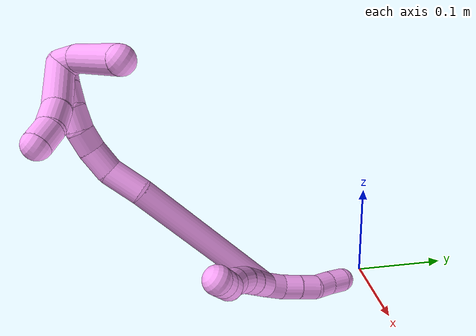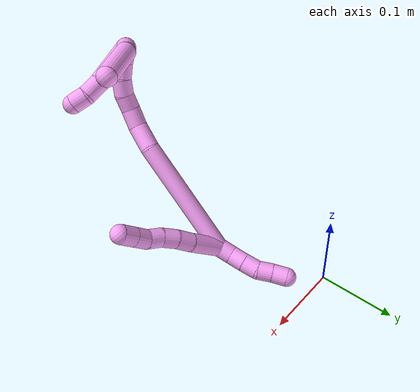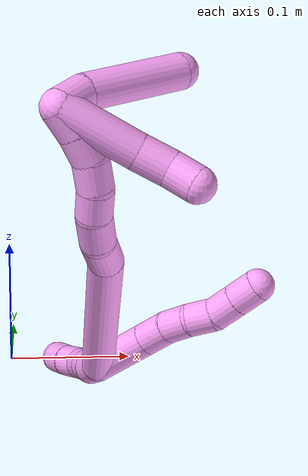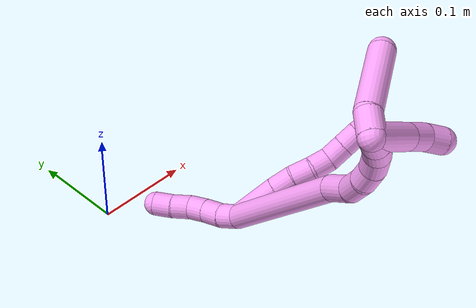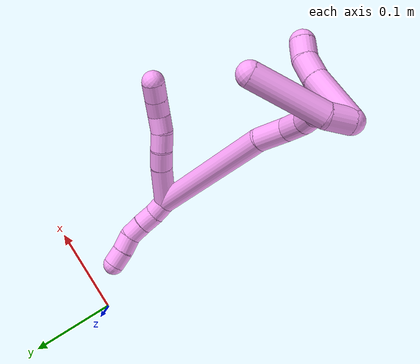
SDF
<sdf version="1.7">
 <world name="default">
  <model name="4">
   <static>0</static>
   <link name="4">
    <collision name="collision-cylinder-e_1_2_8">
     <pose>0.015107 0.006547 0.016841 -0.370775 0.696372 -0.135935</pose>
     <geometry><cylinder><radius>0.0125</radius><length>0.047104</length></cylinder></geometry>
     <surface>
      <friction><ode><mu>1.16</mu><mu2>1.16</mu2><slip1>0</slip1><slip2>0</slip2></ode></friction>
      <contact><ode><kp>1e+06</kp><kd>1</kd><max_vel>0</max_vel><min_depth>0.001</min_depth></ode></contact>
     </surface>
    </collision>
    <visual name="visual-cylinder-e_1_2_8">
     <pose>0.015107 0.006547 0.016841 -0.370775 0.696372 -0.135935</pose>
     <geometry><cylinder><radius>0.0125</radius><length>0.047104</length></cylinder></geometry>
     <material><ambient>1 0.65098 0.996078 1</ambient></material>
    </visual>
    <collision name="collision-cylinder-e_2_8_9">
     <pose>0.036835 0.015401 0.042257 -0.262861 0.64064 -0.087652</pose>
     <geometry><cylinder><radius>0.0125</radius><length>0.022154</length></cylinder></geometry>
     <surface>
      <friction><ode><mu>1.16</mu><mu2>1.16</mu2><slip1>0</slip1><slip2>0</slip2></ode></friction>
      <contact><ode><kp>1e+06</kp><kd>1</kd><max_vel>0</max_vel><min_depth>0.001</min_depth></ode></contact>
     </surface>
    </collision>
    <visual name="visual-cylinder-e_2_8_9">
     <pose>0.036835 0.015401 0.042257 -0.262861 0.64064 -0.087652</pose>
     <geometry><cylinder><radius>0.0125</radius><length>0.022154</length></cylinder></geometry>
     <material><ambient>1 0.65098 0.996078 1</ambient></material>
    </visual>
    <collision name="collision-cylinder-e_3_9_10">
     <pose>0.050469 0.018483 0.0583 -0.103216 0.751301 -0.040737</pose>
     <geometry><cylinder><radius>0.0125</radius><length>0.020546</length></cylinder></geometry>
     <surface>
      <friction><ode><mu>1.16</mu><mu2>1.16</mu2><slip1>0</slip1><slip2>0</slip2></ode></friction>
      <contact><ode><kp>1e+06</kp><kd>1</kd><max_vel>0</max_vel><min_depth>0.001</min_depth></ode></contact>
     </surface>
    </collision>
    <visual name="visual-cylinder-e_3_9_10">
     <pose>0.050469 0.018483 0.0583 -0.103216 0.751301 -0.040737</pose>
     <geometry><cylinder><radius>0.0125</radius><length>0.020546</length></cylinder></geometry>
     <material><ambient>1 0.65098 0.996078 1</ambient></material>
    </visual>
    <collision name="collision-cylinder-e_4_10_11">
     <pose>0.06569 0.020641 0.071326 -0.244099 0.961553 -0.127784</pose>
     <geometry><cylinder><radius>0.0125</radius><length>0.02002</length></cylinder></geometry>
     <surface>
      <friction><ode><mu>1.16</mu><mu2>1.16</mu2><slip1>0</slip1><slip2>0</slip2></ode></friction>
      <contact><ode><kp>1e+06</kp><kd>1</kd><max_vel>0</max_vel><min_depth>0.001</min_depth></ode></contact>
     </surface>
    </collision>
    <visual name="visual-cylinder-e_4_10_11">
     <pose>0.06569 0.020641 0.071326 -0.244099 0.961553 -0.127784</pose>
     <geometry><cylinder><radius>0.0125</radius><length>0.02002</length></cylinder></geometry>
     <material><ambient>1 0.65098 0.996078 1</ambient></material>
    </visual>
    <collision name="collision-cylinder-e_5_11_12">
     <pose>0.080042 0.025778 0.083908 -0.490834 0.657121 -0.170363</pose>
     <geometry><cylinder><radius>0.0125</radius><length>0.020115</length></cylinder></geometry>
     <surface>
      <friction><ode><mu>1.16</mu><mu2>1.16</mu2><slip1>0</slip1><slip2>0</slip2></ode></friction>
      <contact><ode><kp>1e+06</kp><kd>1</kd><max_vel>0</max_vel><min_depth>0.001</min_depth></ode></contact>
     </surface>
    </collision>
    <visual name="visual-cylinder-e_5_11_12">
     <pose>0.080042 0.025778 0.083908 -0.490834 0.657121 -0.170363</pose>
     <geometry><cylinder><radius>0.0125</radius><length>0.020115</length></cylinder></geometry>
     <material><ambient>1 0.65098 0.996078 1</ambient></material>
    </visual>
    <collision name="collision-cylinder-e_6_12_6">
     <pose>0.092301 0.033243 0.097962 -0.485589 0.655606 -0.168062</pose>
     <geometry><cylinder><radius>0.0125</radius><length>0.020061</length></cylinder></geometry>
     <surface>
      <friction><ode><mu>1.16</mu><mu2>1.16</mu2><slip1>0</slip1><slip2>0</slip2></ode></friction>
      <contact><ode><kp>1e+06</kp><kd>1</kd><max_vel>0</max_vel><min_depth>0.001</min_depth></ode></contact>
     </surface>
    </collision>
    <visual name="visual-cylinder-e_6_12_6">
     <pose>0.092301 0.033243 0.097962 -0.485589 0.655606 -0.168062</pose>
     <geometry><cylinder><radius>0.0125</radius><length>0.020061</length></cylinder></geometry>
     <material><ambient>1 0.65098 0.996078 1</ambient></material>
    </visual>
    <collision name="collision-cylinder-e_1_2_13">
     <pose>-0.002066 0.002897 -0.009346 -2.84101 -0.208093 1.20737</pose>
     <geometry><cylinder><radius>0.0125</radius><length>0.02</length></cylinder></geometry>
     <surface>
      <friction><ode><mu>1.16</mu><mu2>1.16</mu2><slip1>0</slip1><slip2>0</slip2></ode></friction>
      <contact><ode><kp>1e+06</kp><kd>1</kd><max_vel>0</max_vel><min_depth>0.001</min_depth></ode></contact>
     </surface>
    </collision>
    <visual name="visual-cylinder-e_1_2_13">
     <pose>-0.002066 0.002897 -0.009346 -2.84101 -0.208093 1.20737</pose>
     <geometry><cylinder><radius>0.0125</radius><length>0.02</length></cylinder></geometry>
     <material><ambient>1 0.65098 0.996078 1</ambient></material>
    </visual>
    <collision name="collision-cylinder-e_2_13_14">
     <pose>-0.005529 0.010631 -0.027331 -2.63122 -0.140192 0.525817</pose>
     <geometry><cylinder><radius>0.0125</radius><length>0.02</length></cylinder></geometry>
     <surface>
      <friction><ode><mu>1.16</mu><mu2>1.16</mu2><slip1>0</slip1><slip2>0</slip2></ode></friction>
      <contact><ode><kp>1e+06</kp><kd>1</kd><max_vel>0</max_vel><min_depth>0.001</min_depth></ode></contact>
     </surface>
    </collision>
    <visual name="visual-cylinder-e_2_13_14">
     <pose>-0.005529 0.010631 -0.027331 -2.63122 -0.140192 0.525817</pose>
     <geometry><cylinder><radius>0.0125</radius><length>0.02</length></cylinder></geometry>
     <material><ambient>1 0.65098 0.996078 1</ambient></material>
    </visual>
    <collision name="collision-cylinder-e_3_14_15">
     <pose>-0.008849 0.019872 -0.044741 -2.67623 -0.193419 0.777125</pose>
     <geometry><cylinder><radius>0.0125</radius><length>0.02</length></cylinder></geometry>
     <surface>
      <friction><ode><mu>1.16</mu><mu2>1.16</mu2><slip1>0</slip1><slip2>0</slip2></ode></friction>
      <contact><ode><kp>1e+06</kp><kd>1</kd><max_vel>0</max_vel><min_depth>0.001</min_depth></ode></contact>
     </surface>
    </collision>
    <visual name="visual-cylinder-e_3_14_15">
     <pose>-0.008849 0.019872 -0.044741 -2.67623 -0.193419 0.777125</pose>
     <geometry><cylinder><radius>0.0125</radius><length>0.02</length></cylinder></geometry>
     <material><ambient>1 0.65098 0.996078 1</ambient></material>
    </visual>
    <collision name="collision-cylinder-e_4_15_16">
     <pose>-0.015895 0.028077 -0.061211 -2.68304 -0.537987 1.73659</pose>
     <geometry><cylinder><radius>0.0125</radius><length>0.02</length></cylinder></geometry>
     <surface>
      <friction><ode><mu>1.16</mu><mu2>1.16</mu2><slip1>0</slip1><slip2>0</slip2></ode></friction>
      <contact><ode><kp>1e+06</kp><kd>1</kd><max_vel>0</max_vel><min_depth>0.001</min_depth></ode></contact>
     </surface>
    </collision>
    <visual name="visual-cylinder-e_4_15_16">
     <pose>-0.015895 0.028077 -0.061211 -2.68304 -0.537987 1.73659</pose>
     <geometry><cylinder><radius>0.0125</radius><length>0.02</length></cylinder></geometry>
     <material><ambient>1 0.65098 0.996078 1</ambient></material>
    </visual>
    <collision name="collision-cylinder-e_5_16_5">
     <pose>-0.025141 0.036387 -0.076829 -2.62385 -0.424841 1.36698</pose>
     <geometry><cylinder><radius>0.0125</radius><length>0.02</length></cylinder></geometry>
     <surface>
      <friction><ode><mu>1.16</mu><mu2>1.16</mu2><slip1>0</slip1><slip2>0</slip2></ode></friction>
      <contact><ode><kp>1e+06</kp><kd>1</kd><max_vel>0</max_vel><min_depth>0.001</min_depth></ode></contact>
     </surface>
    </collision>
    <visual name="visual-cylinder-e_5_16_5">
     <pose>-0.025141 0.036387 -0.076829 -2.62385 -0.424841 1.36698</pose>
     <geometry><cylinder><radius>0.0125</radius><length>0.02</length></cylinder></geometry>
     <material><ambient>1 0.65098 0.996078 1</ambient></material>
    </visual>
    <collision name="collision-cylinder-e_1_2_17">
     <pose>-0.007912 0.001292 0.079611 -0.016229 -0.099048 0.000804</pose>
     <geometry><cylinder><radius>0.0125</radius><length>0.160026</length></cylinder></geometry>
     <surface>
      <friction><ode><mu>1.16</mu><mu2>1.16</mu2><slip1>0</slip1><slip2>0</slip2></ode></friction>
      <contact><ode><kp>1e+06</kp><kd>1</kd><max_vel>0</max_vel><min_depth>0.001</min_depth></ode></contact>
     </surface>
    </collision>
    <visual name="visual-cylinder-e_1_2_17">
     <pose>-0.007912 0.001292 0.079611 -0.016229 -0.099048 0.000804</pose>
     <geometry><cylinder><radius>0.0125</radius><length>0.160026</length></cylinder></geometry>
     <material><ambient>1 0.65098 0.996078 1</ambient></material>
    </visual>
    <collision name="collision-cylinder-e_2_17_18">
     <pose>-0.020302 0.00015 0.175058 0.152521 -0.272472 -0.020948</pose>
     <geometry><cylinder><radius>0.0125</radius><length>0.033274</length></cylinder></geometry>
     <surface>
      <friction><ode><mu>1.16</mu><mu2>1.16</mu2><slip1>0</slip1><slip2>0</slip2></ode></friction>
      <contact><ode><kp>1e+06</kp><kd>1</kd><max_vel>0</max_vel><min_depth>0.001</min_depth></ode></contact>
     </surface>
    </collision>
    <visual name="visual-cylinder-e_2_17_18">
     <pose>-0.020302 0.00015 0.175058 0.152521 -0.272472 -0.020948</pose>
     <geometry><cylinder><radius>0.0125</radius><length>0.033274</length></cylinder></geometry>
     <material><ambient>1 0.65098 0.996078 1</ambient></material>
    </visual>
    <collision name="collision-cylinder-e_3_18_19">
     <pose>-0.028011 9.3e-05 0.202867 -0.196107 -0.258884 0.025608</pose>
     <geometry><cylinder><radius>0.0125</radius><length>0.025251</length></cylinder></geometry>
     <surface>
      <friction><ode><mu>1.16</mu><mu2>1.16</mu2><slip1>0</slip1><slip2>0</slip2></ode></friction>
      <contact><ode><kp>1e+06</kp><kd>1</kd><max_vel>0</max_vel><min_depth>0.001</min_depth></ode></contact>
     </surface>
    </collision>
    <visual name="visual-cylinder-e_3_18_19">
     <pose>-0.028011 9.3e-05 0.202867 -0.196107 -0.258884 0.025608</pose>
     <geometry><cylinder><radius>0.0125</radius><length>0.025251</length></cylinder></geometry>
     <material><ambient>1 0.65098 0.996078 1</ambient></material>
    </visual>
    <collision name="collision-cylinder-e_4_19_20">
     <pose>-0.032446 0.006476 0.224026 -0.411007 -0.119431 0.024923</pose>
     <geometry><cylinder><radius>0.0125</radius><length>0.020191</length></cylinder></geometry>
     <surface>
      <friction><ode><mu>1.16</mu><mu2>1.16</mu2><slip1>0</slip1><slip2>0</slip2></ode></friction>
      <contact><ode><kp>1e+06</kp><kd>1</kd><max_vel>0</max_vel><min_depth>0.001</min_depth></ode></contact>
     </surface>
    </collision>
    <visual name="visual-cylinder-e_4_19_20">
     <pose>-0.032446 0.006476 0.224026 -0.411007 -0.119431 0.024923</pose>
     <geometry><cylinder><radius>0.0125</radius><length>0.020191</length></cylinder></geometry>
     <material><ambient>1 0.65098 0.996078 1</ambient></material>
    </visual>
    <collision name="collision-cylinder-e_5_20_21">
     <pose>-0.037198 0.015717 0.241584 -0.558997 -0.345124 0.099966</pose>
     <geometry><cylinder><radius>0.0125</radius><length>0.020982</length></cylinder></geometry>
     <surface>
      <friction><ode><mu>1.16</mu><mu2>1.16</mu2><slip1>0</slip1><slip2>0</slip2></ode></friction>
      <contact><ode><kp>1e+06</kp><kd>1</kd><max_vel>0</max_vel><min_depth>0.001</min_depth></ode></contact>
     </surface>
    </collision>
    <visual name="visual-cylinder-e_5_20_21">
     <pose>-0.037198 0.015717 0.241584 -0.558997 -0.345124 0.099966</pose>
     <geometry><cylinder><radius>0.0125</radius><length>0.020982</length></cylinder></geometry>
     <material><ambient>1 0.65098 0.996078 1</ambient></material>
    </visual>
    <collision name="collision-cylinder-e_6_21_22">
     <pose>-0.046811 0.025207 0.256864 -0.55196 -0.641698 0.187685</pose>
     <geometry><cylinder><radius>0.0125</radius><length>0.020261</length></cylinder></geometry>
     <surface>
      <friction><ode><mu>1.16</mu><mu2>1.16</mu2><slip1>0</slip1><slip2>0</slip2></ode></friction>
      <contact><ode><kp>1e+06</kp><kd>1</kd><max_vel>0</max_vel><min_depth>0.001</min_depth></ode></contact>
     </surface>
    </collision>
    <visual name="visual-cylinder-e_6_21_22">
     <pose>-0.046811 0.025207 0.256864 -0.55196 -0.641698 0.187685</pose>
     <geometry><cylinder><radius>0.0125</radius><length>0.020261</length></cylinder></geometry>
     <material><ambient>1 0.65098 0.996078 1</ambient></material>
    </visual>
    <collision name="collision-cylinder-e_7_22_1">
     <pose>-0.059735 0.03345 0.269872 -0.579014 -0.755341 0.235252</pose>
     <geometry><cylinder><radius>0.0125</radius><length>0.020015</length></cylinder></geometry>
     <surface>
      <friction><ode><mu>1.16</mu><mu2>1.16</mu2><slip1>0</slip1><slip2>0</slip2></ode></friction>
      <contact><ode><kp>1e+06</kp><kd>1</kd><max_vel>0</max_vel><min_depth>0.001</min_depth></ode></contact>
     </surface>
    </collision>
    <visual name="visual-cylinder-e_7_22_1">
     <pose>-0.059735 0.03345 0.269872 -0.579014 -0.755341 0.235252</pose>
     <geometry><cylinder><radius>0.0125</radius><length>0.020015</length></cylinder></geometry>
     <material><ambient>1 0.65098 0.996078 1</ambient></material>
    </visual>
    <collision name="collision-cylinder-e_1_1_23">
     <pose>-0.059908 0.047152 0.272527 -1.91145 0.575533 -0.793464</pose>
     <geometry><cylinder><radius>0.0125</radius><length>0.024574</length></cylinder></geometry>
     <surface>
      <friction><ode><mu>1.16</mu><mu2>1.16</mu2><slip1>0</slip1><slip2>0</slip2></ode></friction>
      <contact><ode><kp>1e+06</kp><kd>1</kd><max_vel>0</max_vel><min_depth>0.001</min_depth></ode></contact>
     </surface>
    </collision>
    <visual name="visual-cylinder-e_1_1_23">
     <pose>-0.059908 0.047152 0.272527 -1.91145 0.575533 -0.793464</pose>
     <geometry><cylinder><radius>0.0125</radius><length>0.024574</length></cylinder></geometry>
     <material><ambient>1 0.65098 0.996078 1</ambient></material>
    </visual>
    <collision name="collision-cylinder-e_2_23_4">
     <pose>-0.023437 0.078592 0.261132 -1.92165 0.910392 -1.22196</pose>
     <geometry><cylinder><radius>0.0125</radius><length>0.075426</length></cylinder></geometry>
     <surface>
      <friction><ode><mu>1.16</mu><mu2>1.16</mu2><slip1>0</slip1><slip2>0</slip2></ode></friction>
      <contact><ode><kp>1e+06</kp><kd>1</kd><max_vel>0</max_vel><min_depth>0.001</min_depth></ode></contact>
     </surface>
    </collision>
    <visual name="visual-cylinder-e_2_23_4">
     <pose>-0.023437 0.078592 0.261132 -1.92165 0.910392 -1.22196</pose>
     <geometry><cylinder><radius>0.0125</radius><length>0.075426</length></cylinder></geometry>
     <material><ambient>1 0.65098 0.996078 1</ambient></material>
    </visual>
    <collision name="collision-cylinder-e_1_1_24">
     <pose>-0.039878 0.03156 0.269163 2.42953 1.24612 2.18641</pose>
     <geometry><cylinder><radius>0.0125</radius><length>0.056381</length></cylinder></geometry>
     <surface>
      <friction><ode><mu>1.16</mu><mu2>1.16</mu2><slip1>0</slip1><slip2>0</slip2></ode></friction>
      <contact><ode><kp>1e+06</kp><kd>1</kd><max_vel>0</max_vel><min_depth>0.001</min_depth></ode></contact>
     </surface>
    </collision>
    <visual name="visual-cylinder-e_1_1_24">
     <pose>-0.039878 0.03156 0.269163 2.42953 1.24612 2.18641</pose>
     <geometry><cylinder><radius>0.0125</radius><length>0.056381</length></cylinder></geometry>
     <material><ambient>1 0.65098 0.996078 1</ambient></material>
    </visual>
    <collision name="collision-cylinder-e_2_24_25">
     <pose>-0.001859 0.022536 0.261172 1.93026 1.28151 1.64479</pose>
     <geometry><cylinder><radius>0.0125</radius><length>0.023581</length></cylinder></geometry>
     <surface>
      <friction><ode><mu>1.16</mu><mu2>1.16</mu2><slip1>0</slip1><slip2>0</slip2></ode></friction>
      <contact><ode><kp>1e+06</kp><kd>1</kd><max_vel>0</max_vel><min_depth>0.001</min_depth></ode></contact>
     </surface>
    </collision>
    <visual name="visual-cylinder-e_2_24_25">
     <pose>-0.001859 0.022536 0.261172 1.93026 1.28151 1.64479</pose>
     <geometry><cylinder><radius>0.0125</radius><length>0.023581</length></cylinder></geometry>
     <material><ambient>1 0.65098 0.996078 1</ambient></material>
    </visual>
    <collision name="collision-cylinder-e_3_25_3">
     <pose>0.018267 0.014801 0.261189 1.3148 1.07787 0.864937</pose>
     <geometry><cylinder><radius>0.0125</radius><length>0.020037</length></cylinder></geometry>
     <surface>
      <friction><ode><mu>1.16</mu><mu2>1.16</mu2><slip1>0</slip1><slip2>0</slip2></ode></friction>
      <contact><ode><kp>1e+06</kp><kd>1</kd><max_vel>0</max_vel><min_depth>0.001</min_depth></ode></contact>
     </surface>
    </collision>
    <visual name="visual-cylinder-e_3_25_3">
     <pose>0.018267 0.014801 0.261189 1.3148 1.07787 0.864937</pose>
     <geometry><cylinder><radius>0.0125</radius><length>0.020037</length></cylinder></geometry>
     <material><ambient>1 0.65098 0.996078 1</ambient></material>
    </visual>
    <collision name="collision-sphere-3">
     <pose>0.027093 0.010215 0.26239 0 -0 0</pose>
     <geometry><sphere><radius>0.0125</radius></sphere></geometry>
     <surface>
      <friction><ode><mu>1.16</mu><mu2>1.16</mu2><slip1>0</slip1><slip2>0</slip2></ode></friction>
      <contact><ode><kp>1e+06</kp><kd>1</kd><max_vel>0</max_vel><min_depth>0.001</min_depth></ode></contact>
     </surface>
    </collision>
    <visual name="visual-sphere-3">
     <pose>0.027093 0.010215 0.26239 0 -0 0</pose>
     <geometry><sphere><radius>0.0125</radius></sphere></geometry>
     <material><ambient>1 0.65098 0.996078 1</ambient></material>
    </visual>
    <collision name="collision-sphere-25">
     <pose>0.009441 0.019387 0.259989 0 -0 0</pose>
     <geometry><sphere><radius>0.0125</radius></sphere></geometry>
     <surface>
      <friction><ode><mu>1.16</mu><mu2>1.16</mu2><slip1>0</slip1><slip2>0</slip2></ode></friction>
      <contact><ode><kp>1e+06</kp><kd>1</kd><max_vel>0</max_vel><min_depth>0.001</min_depth></ode></contact>
     </surface>
    </collision>
    <visual name="visual-sphere-25">
     <pose>0.009441 0.019387 0.259989 0 -0 0</pose>
     <geometry><sphere><radius>0.0125</radius></sphere></geometry>
     <material><ambient>1 0.65098 0.996078 1</ambient></material>
    </visual>
    <collision name="collision-sphere-24">
     <pose>-0.01316 0.025685 0.262355 0 -0 0</pose>
     <geometry><sphere><radius>0.0125</radius></sphere></geometry>
     <surface>
      <friction><ode><mu>1.16</mu><mu2>1.16</mu2><slip1>0</slip1><slip2>0</slip2></ode></friction>
      <contact><ode><kp>1e+06</kp><kd>1</kd><max_vel>0</max_vel><min_depth>0.001</min_depth></ode></contact>
     </surface>
    </collision>
    <visual name="visual-sphere-24">
     <pose>-0.01316 0.025685 0.262355 0 -0 0</pose>
     <geometry><sphere><radius>0.0125</radius></sphere></geometry>
     <material><ambient>1 0.65098 0.996078 1</ambient></material>
    </visual>
    <collision name="collision-sphere-4">
     <pose>0.006347 0.100317 0.253181 0 -0 0</pose>
     <geometry><sphere><radius>0.0125</radius></sphere></geometry>
     <surface>
      <friction><ode><mu>1.16</mu><mu2>1.16</mu2><slip1>0</slip1><slip2>0</slip2></ode></friction>
      <contact><ode><kp>1e+06</kp><kd>1</kd><max_vel>0</max_vel><min_depth>0.001</min_depth></ode></contact>
     </surface>
    </collision>
    <visual name="visual-sphere-4">
     <pose>0.006347 0.100317 0.253181 0 -0 0</pose>
     <geometry><sphere><radius>0.0125</radius></sphere></geometry>
     <material><ambient>1 0.65098 0.996078 1</ambient></material>
    </visual>
    <collision name="collision-sphere-23">
     <pose>-0.053221 0.056867 0.269083 0 -0 0</pose>
     <geometry><sphere><radius>0.0125</radius></sphere></geometry>
     <surface>
      <friction><ode><mu>1.16</mu><mu2>1.16</mu2><slip1>0</slip1><slip2>0</slip2></ode></friction>
      <contact><ode><kp>1e+06</kp><kd>1</kd><max_vel>0</max_vel><min_depth>0.001</min_depth></ode></contact>
     </surface>
    </collision>
    <visual name="visual-sphere-23">
     <pose>-0.053221 0.056867 0.269083 0 -0 0</pose>
     <geometry><sphere><radius>0.0125</radius></sphere></geometry>
     <material><ambient>1 0.65098 0.996078 1</ambient></material>
    </visual>
    <collision name="collision-sphere-1">
     <pose>-0.066596 0.037436 0.275971 0 -0 0</pose>
     <geometry><sphere><radius>0.0125</radius></sphere></geometry>
     <surface>
      <friction><ode><mu>1.16</mu><mu2>1.16</mu2><slip1>0</slip1><slip2>0</slip2></ode></friction>
      <contact><ode><kp>1e+06</kp><kd>1</kd><max_vel>0</max_vel><min_depth>0.001</min_depth></ode></contact>
     </surface>
    </collision>
    <visual name="visual-sphere-1">
     <pose>-0.066596 0.037436 0.275971 0 -0 0</pose>
     <geometry><sphere><radius>0.0125</radius></sphere></geometry>
     <material><ambient>1 0.65098 0.996078 1</ambient></material>
    </visual>
    <collision name="collision-sphere-22">
     <pose>-0.052874 0.029463 0.263774 0 -0 0</pose>
     <geometry><sphere><radius>0.0125</radius></sphere></geometry>
     <surface>
      <friction><ode><mu>1.16</mu><mu2>1.16</mu2><slip1>0</slip1><slip2>0</slip2></ode></friction>
      <contact><ode><kp>1e+06</kp><kd>1</kd><max_vel>0</max_vel><min_depth>0.001</min_depth></ode></contact>
     </surface>
    </collision>
    <visual name="visual-sphere-22">
     <pose>-0.052874 0.029463 0.263774 0 -0 0</pose>
     <geometry><sphere><radius>0.0125</radius></sphere></geometry>
     <material><ambient>1 0.65098 0.996078 1</ambient></material>
    </visual>
    <collision name="collision-sphere-21">
     <pose>-0.040747 0.020952 0.249954 0 -0 0</pose>
     <geometry><sphere><radius>0.0125</radius></sphere></geometry>
     <surface>
      <friction><ode><mu>1.16</mu><mu2>1.16</mu2><slip1>0</slip1><slip2>0</slip2></ode></friction>
      <contact><ode><kp>1e+06</kp><kd>1</kd><max_vel>0</max_vel><min_depth>0.001</min_depth></ode></contact>
     </surface>
    </collision>
    <visual name="visual-sphere-21">
     <pose>-0.040747 0.020952 0.249954 0 -0 0</pose>
     <geometry><sphere><radius>0.0125</radius></sphere></geometry>
     <material><ambient>1 0.65098 0.996078 1</ambient></material>
    </visual>
    <collision name="collision-sphere-12">
     <pose>0.086186 0.029532 0.090931 0 -0 0</pose>
     <geometry><sphere><radius>0.0125</radius></sphere></geometry>
     <surface>
      <friction><ode><mu>1.16</mu><mu2>1.16</mu2><slip1>0</slip1><slip2>0</slip2></ode></friction>
      <contact><ode><kp>1e+06</kp><kd>1</kd><max_vel>0</max_vel><min_depth>0.001</min_depth></ode></contact>
     </surface>
    </collision>
    <visual name="visual-sphere-12">
     <pose>0.086186 0.029532 0.090931 0 -0 0</pose>
     <geometry><sphere><radius>0.0125</radius></sphere></geometry>
     <material><ambient>1 0.65098 0.996078 1</ambient></material>
    </visual>
    <collision name="collision-sphere-11">
     <pose>0.073899 0.022025 0.076885 0 -0 0</pose>
     <geometry><sphere><radius>0.0125</radius></sphere></geometry>
     <surface>
      <friction><ode><mu>1.16</mu><mu2>1.16</mu2><slip1>0</slip1><slip2>0</slip2></ode></friction>
      <contact><ode><kp>1e+06</kp><kd>1</kd><max_vel>0</max_vel><min_depth>0.001</min_depth></ode></contact>
     </surface>
    </collision>
    <visual name="visual-sphere-11">
     <pose>0.073899 0.022025 0.076885 0 -0 0</pose>
     <geometry><sphere><radius>0.0125</radius></sphere></geometry>
     <material><ambient>1 0.65098 0.996078 1</ambient></material>
    </visual>
    <collision name="collision-sphere-10">
     <pose>0.057481 0.019256 0.065768 0 -0 0</pose>
     <geometry><sphere><radius>0.0125</radius></sphere></geometry>
     <surface>
      <friction><ode><mu>1.16</mu><mu2>1.16</mu2><slip1>0</slip1><slip2>0</slip2></ode></friction>
      <contact><ode><kp>1e+06</kp><kd>1</kd><max_vel>0</max_vel><min_depth>0.001</min_depth></ode></contact>
     </surface>
    </collision>
    <visual name="visual-sphere-10">
     <pose>0.057481 0.019256 0.065768 0 -0 0</pose>
     <geometry><sphere><radius>0.0125</radius></sphere></geometry>
     <material><ambient>1 0.65098 0.996078 1</ambient></material>
    </visual>
    <collision name="collision-sphere-9">
     <pose>0.043456 0.017709 0.050833 0 -0 0</pose>
     <geometry><sphere><radius>0.0125</radius></sphere></geometry>
     <surface>
      <friction><ode><mu>1.16</mu><mu2>1.16</mu2><slip1>0</slip1><slip2>0</slip2></ode></friction>
      <contact><ode><kp>1e+06</kp><kd>1</kd><max_vel>0</max_vel><min_depth>0.001</min_depth></ode></contact>
     </surface>
    </collision>
    <visual name="visual-sphere-9">
     <pose>0.043456 0.017709 0.050833 0 -0 0</pose>
     <geometry><sphere><radius>0.0125</radius></sphere></geometry>
     <material><ambient>1 0.65098 0.996078 1</ambient></material>
    </visual>
    <collision name="collision-sphere-2">
     <geometry><sphere><radius>0.0125</radius></sphere></geometry>
     <surface>
      <friction><ode><mu>1.16</mu><mu2>1.16</mu2><slip1>0</slip1><slip2>0</slip2></ode></friction>
      <contact><ode><kp>1e+06</kp><kd>1</kd><max_vel>0</max_vel><min_depth>0.001</min_depth></ode></contact>
     </surface>
    </collision>
    <visual name="visual-sphere-2">
     <geometry><sphere><radius>0.0125</radius></sphere></geometry>
     <material><ambient>1 0.65098 0.996078 1</ambient></material>
    </visual>
    <collision name="collision-sphere-19">
     <pose>-0.031243 0.002472 0.214837 0 -0 0</pose>
     <geometry><sphere><radius>0.0125</radius></sphere></geometry>
     <surface>
      <friction><ode><mu>1.16</mu><mu2>1.16</mu2><slip1>0</slip1><slip2>0</slip2></ode></friction>
      <contact><ode><kp>1e+06</kp><kd>1</kd><max_vel>0</max_vel><min_depth>0.001</min_depth></ode></contact>
     </surface>
    </collision>
    <visual name="visual-sphere-19">
     <pose>-0.031243 0.002472 0.214837 0 -0 0</pose>
     <geometry><sphere><radius>0.0125</radius></sphere></geometry>
     <material><ambient>1 0.65098 0.996078 1</ambient></material>
    </visual>
    <collision name="collision-sphere-8">
     <pose>0.030214 0.013094 0.033681 0 -0 0</pose>
     <geometry><sphere><radius>0.0125</radius></sphere></geometry>
     <surface>
      <friction><ode><mu>1.16</mu><mu2>1.16</mu2><slip1>0</slip1><slip2>0</slip2></ode></friction>
      <contact><ode><kp>1e+06</kp><kd>1</kd><max_vel>0</max_vel><min_depth>0.001</min_depth></ode></contact>
     </surface>
    </collision>
    <visual name="visual-sphere-8">
     <pose>0.030214 0.013094 0.033681 0 -0 0</pose>
     <geometry><sphere><radius>0.0125</radius></sphere></geometry>
     <material><ambient>1 0.65098 0.996078 1</ambient></material>
    </visual>
    <collision name="collision-sphere-6">
     <pose>0.098416 0.036954 0.104994 0 -0 0</pose>
     <geometry><sphere><radius>0.0125</radius></sphere></geometry>
     <surface>
      <friction><ode><mu>1.16</mu><mu2>1.16</mu2><slip1>0</slip1><slip2>0</slip2></ode></friction>
      <contact><ode><kp>1e+06</kp><kd>1</kd><max_vel>0</max_vel><min_depth>0.001</min_depth></ode></contact>
     </surface>
    </collision>
    <visual name="visual-sphere-6">
     <pose>0.098416 0.036954 0.104994 0 -0 0</pose>
     <geometry><sphere><radius>0.0125</radius></sphere></geometry>
     <material><ambient>1 0.65098 0.996078 1</ambient></material>
    </visual>
    <collision name="collision-sphere-13">
     <pose>-0.004132 0.005794 -0.018691 0 -0 0</pose>
     <geometry><sphere><radius>0.0125</radius></sphere></geometry>
     <surface>
      <friction><ode><mu>1.16</mu><mu2>1.16</mu2><slip1>0</slip1><slip2>0</slip2></ode></friction>
      <contact><ode><kp>1e+06</kp><kd>1</kd><max_vel>0</max_vel><min_depth>0.001</min_depth></ode></contact>
     </surface>
    </collision>
    <visual name="visual-sphere-13">
     <pose>-0.004132 0.005794 -0.018691 0 -0 0</pose>
     <geometry><sphere><radius>0.0125</radius></sphere></geometry>
     <material><ambient>1 0.65098 0.996078 1</ambient></material>
    </visual>
    <collision name="collision-sphere-14">
     <pose>-0.006927 0.015468 -0.035971 0 -0 0</pose>
     <geometry><sphere><radius>0.0125</radius></sphere></geometry>
     <surface>
      <friction><ode><mu>1.16</mu><mu2>1.16</mu2><slip1>0</slip1><slip2>0</slip2></ode></friction>
      <contact><ode><kp>1e+06</kp><kd>1</kd><max_vel>0</max_vel><min_depth>0.001</min_depth></ode></contact>
     </surface>
    </collision>
    <visual name="visual-sphere-14">
     <pose>-0.006927 0.015468 -0.035971 0 -0 0</pose>
     <geometry><sphere><radius>0.0125</radius></sphere></geometry>
     <material><ambient>1 0.65098 0.996078 1</ambient></material>
    </visual>
    <collision name="collision-sphere-15">
     <pose>-0.010771 0.024276 -0.053511 0 -0 0</pose>
     <geometry><sphere><radius>0.0125</radius></sphere></geometry>
     <surface>
      <friction><ode><mu>1.16</mu><mu2>1.16</mu2><slip1>0</slip1><slip2>0</slip2></ode></friction>
      <contact><ode><kp>1e+06</kp><kd>1</kd><max_vel>0</max_vel><min_depth>0.001</min_depth></ode></contact>
     </surface>
    </collision>
    <visual name="visual-sphere-15">
     <pose>-0.010771 0.024276 -0.053511 0 -0 0</pose>
     <geometry><sphere><radius>0.0125</radius></sphere></geometry>
     <material><ambient>1 0.65098 0.996078 1</ambient></material>
    </visual>
    <collision name="collision-sphere-16">
     <pose>-0.021019 0.031878 -0.068912 0 -0 0</pose>
     <geometry><sphere><radius>0.0125</radius></sphere></geometry>
     <surface>
      <friction><ode><mu>1.16</mu><mu2>1.16</mu2><slip1>0</slip1><slip2>0</slip2></ode></friction>
      <contact><ode><kp>1e+06</kp><kd>1</kd><max_vel>0</max_vel><min_depth>0.001</min_depth></ode></contact>
     </surface>
    </collision>
    <visual name="visual-sphere-16">
     <pose>-0.021019 0.031878 -0.068912 0 -0 0</pose>
     <geometry><sphere><radius>0.0125</radius></sphere></geometry>
     <material><ambient>1 0.65098 0.996078 1</ambient></material>
    </visual>
    <collision name="collision-sphere-5">
     <pose>-0.029263 0.040897 -0.084746 0 -0 0</pose>
     <geometry><sphere><radius>0.0125</radius></sphere></geometry>
     <surface>
      <friction><ode><mu>1.16</mu><mu2>1.16</mu2><slip1>0</slip1><slip2>0</slip2></ode></friction>
      <contact><ode><kp>1e+06</kp><kd>1</kd><max_vel>0</max_vel><min_depth>0.001</min_depth></ode></contact>
     </surface>
    </collision>
    <visual name="visual-sphere-5">
     <pose>-0.029263 0.040897 -0.084746 0 -0 0</pose>
     <geometry><sphere><radius>0.0125</radius></sphere></geometry>
     <material><ambient>1 0.65098 0.996078 1</ambient></material>
    </visual>
    <collision name="collision-sphere-17">
     <pose>-0.015824 0.002584 0.159221 0 -0 0</pose>
     <geometry><sphere><radius>0.0125</radius></sphere></geometry>
     <surface>
      <friction><ode><mu>1.16</mu><mu2>1.16</mu2><slip1>0</slip1><slip2>0</slip2></ode></friction>
      <contact><ode><kp>1e+06</kp><kd>1</kd><max_vel>0</max_vel><min_depth>0.001</min_depth></ode></contact>
     </surface>
    </collision>
    <visual name="visual-sphere-17">
     <pose>-0.015824 0.002584 0.159221 0 -0 0</pose>
     <geometry><sphere><radius>0.0125</radius></sphere></geometry>
     <material><ambient>1 0.65098 0.996078 1</ambient></material>
    </visual>
    <collision name="collision-sphere-18">
     <pose>-0.024779 -0.002285 0.190896 0 -0 0</pose>
     <geometry><sphere><radius>0.0125</radius></sphere></geometry>
     <surface>
      <friction><ode><mu>1.16</mu><mu2>1.16</mu2><slip1>0</slip1><slip2>0</slip2></ode></friction>
      <contact><ode><kp>1e+06</kp><kd>1</kd><max_vel>0</max_vel><min_depth>0.001</min_depth></ode></contact>
     </surface>
    </collision>
    <visual name="visual-sphere-18">
     <pose>-0.024779 -0.002285 0.190896 0 -0 0</pose>
     <geometry><sphere><radius>0.0125</radius></sphere></geometry>
     <material><ambient>1 0.65098 0.996078 1</ambient></material>
    </visual>
    <collision name="collision-sphere-20">
     <pose>-0.033649 0.010481 0.233215 0 -0 0</pose>
     <geometry><sphere><radius>0.0125</radius></sphere></geometry>
     <surface>
      <friction><ode><mu>1.16</mu><mu2>1.16</mu2><slip1>0</slip1><slip2>0</slip2></ode></friction>
      <contact><ode><kp>1e+06</kp><kd>1</kd><max_vel>0</max_vel><min_depth>0.001</min_depth></ode></contact>
     </surface>
    </collision>
    <visual name="visual-sphere-20">
     <pose>-0.033649 0.010481 0.233215 0 -0 0</pose>
     <geometry><sphere><radius>0.0125</radius></sphere></geometry>
     <material><ambient>1 0.65098 0.996078 1</ambient></material>
    </visual>
    <inertial>
     <pose>-0.006937 0.021512 0.133954 0 -0 0</pose>
     <mass>0.75</mass>
     <inertia>
      <ixx>0.000381</ixx>
      <ixy>0</ixy>
      <ixz>0</ixz>
      <iyy>0.000416</iyy>
      <iyz>0</iyz>
      <izz>-3.7e-05</izz>
     </inertia>
    </inertial>
   </link>
   <pose>0.069424 -0.12446 0.033379 0.814901 0.202902 -0.045167</pose>
  </model>
 </world>
</sdf>
